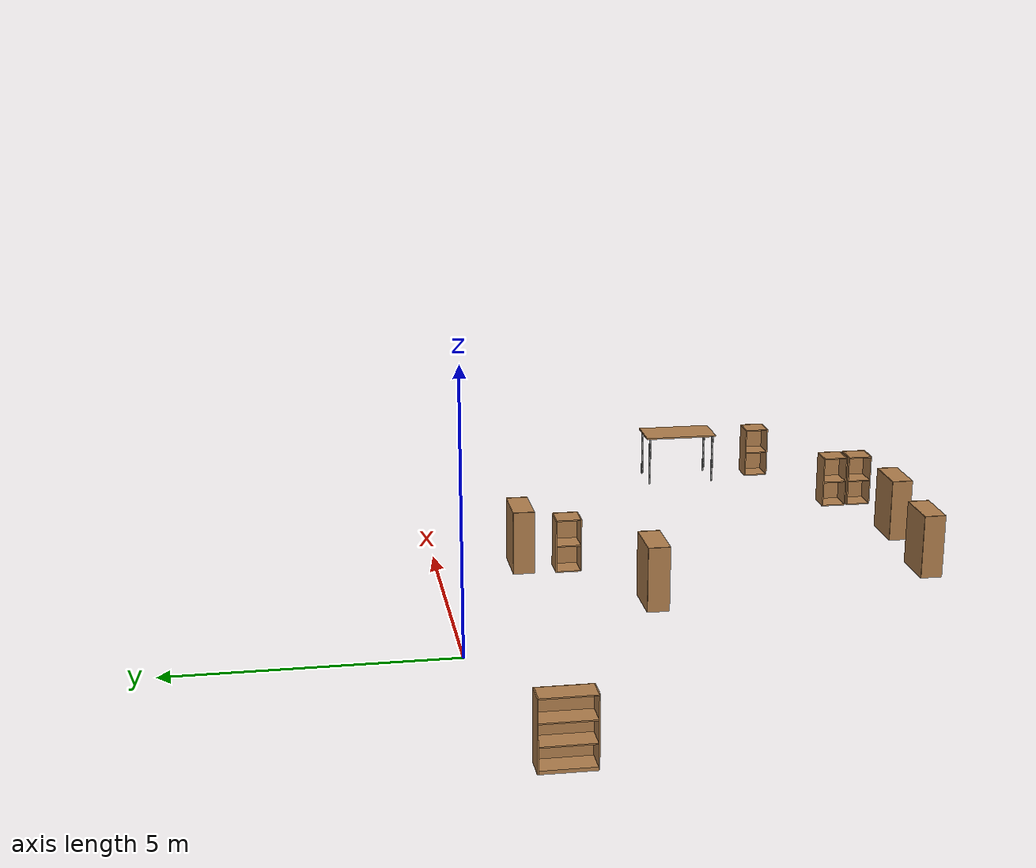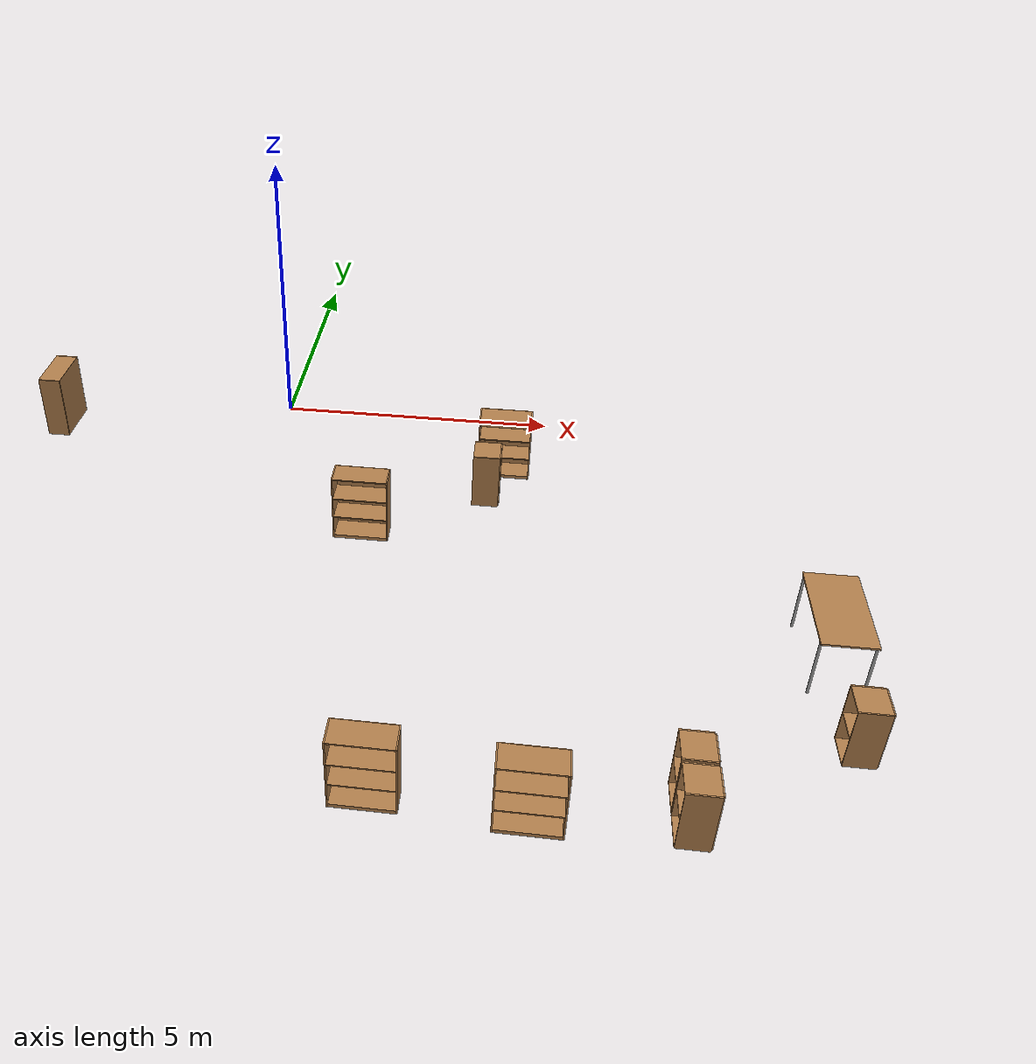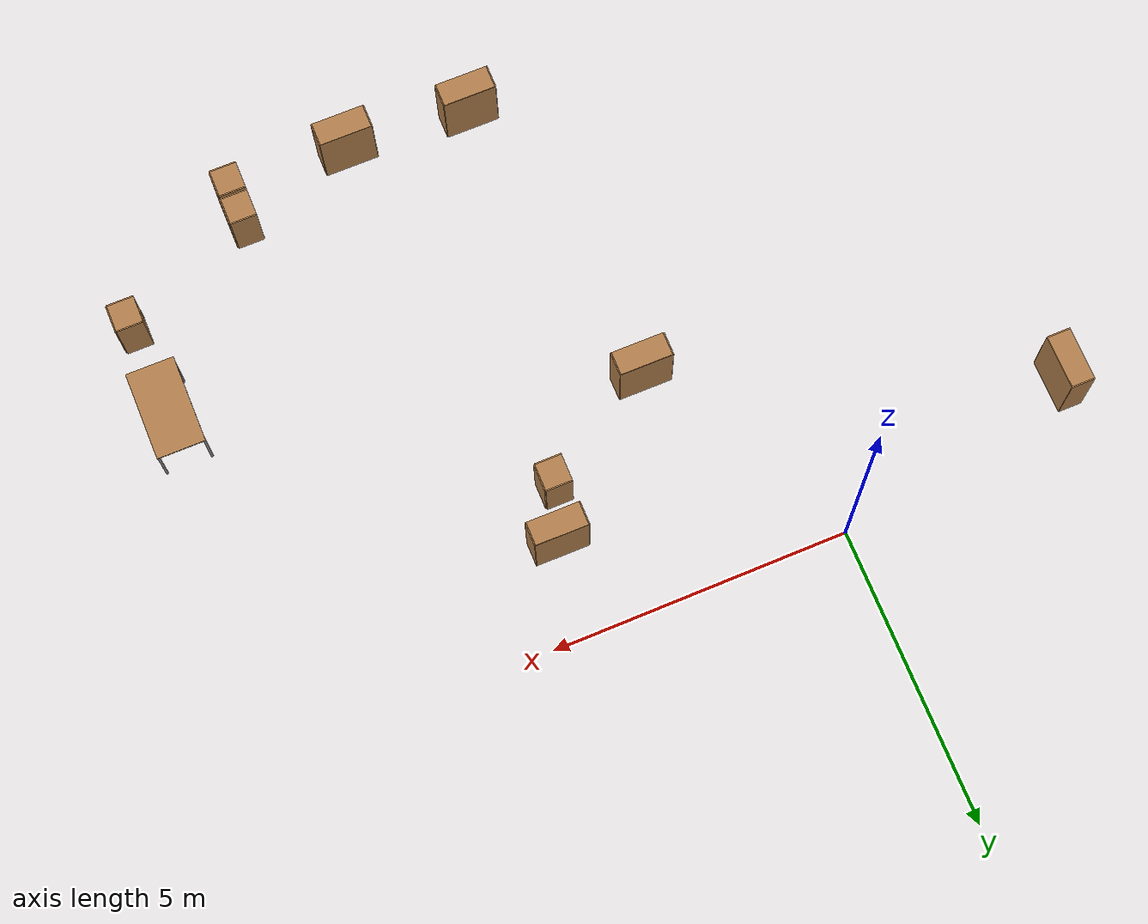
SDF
<sdf version="1.4">
 <world name="prepare">
  <model name="bookshelf_0">
   <static>1</static>
   <link name="link">
    <inertial><mass>1</mass></inertial>
    <collision name="back">
     <pose>0 0.005 0.6 0 -0 0</pose>
     <geometry><box><size>0.9 0.01 1.2</size></box></geometry>
    </collision>
    <visual name="visual1">
     <pose>0 0.005 0.6 0 -0 0</pose>
     <geometry><box><size>0.9 0.01 1.2</size></box></geometry>
     <material>
      <script><uri>file://media/materials/scripts/gazebo.material</uri><name>Gazebo/Wood</name></script>
     </material>
    </visual>
    <collision name="left_side">
     <pose>0.45 -0.195 0.6 0 -0 0</pose>
     <geometry><box><size>0.02 0.4 1.2</size></box></geometry>
    </collision>
    <visual name="visual2">
     <pose>0.45 -0.195 0.6 0 -0 0</pose>
     <geometry><box><size>0.02 0.4 1.2</size></box></geometry>
     <material>
      <script><uri>file://media/materials/scripts/gazebo.material</uri><name>Gazebo/Wood</name></script>
     </material>
    </visual>
    <collision name="right_side">
     <pose>-0.45 -0.195 0.6 0 -0 0</pose>
     <geometry><box><size>0.02 0.4 1.2</size></box></geometry>
    </collision>
    <visual name="visual3">
     <pose>-0.45 -0.195 0.6 0 -0 0</pose>
     <geometry><box><size>0.02 0.4 1.2</size></box></geometry>
     <material>
      <script><uri>file://media/materials/scripts/gazebo.material</uri><name>Gazebo/Wood</name></script>
     </material>
    </visual>
    <collision name="bottom">
     <pose>0 -0.195 0.03 0 -0 0</pose>
     <geometry><box><size>0.88 0.4 0.06</size></box></geometry>
    </collision>
    <visual name="visual4">
     <pose>0 -0.195 0.03 0 -0 0</pose>
     <geometry><box><size>0.88 0.4 0.06</size></box></geometry>
     <material>
      <script><uri>file://media/materials/scripts/gazebo.material</uri><name>Gazebo/Wood</name></script>
     </material>
    </visual>
    <collision name="top">
     <pose>0 -0.195 1.19 0 -0 0</pose>
     <geometry><box><size>0.88 0.4 0.02</size></box></geometry>
    </collision>
    <visual name="visual5">
     <pose>0 -0.195 1.19 0 -0 0</pose>
     <geometry><box><size>0.88 0.4 0.02</size></box></geometry>
     <material>
      <script><uri>file://media/materials/scripts/gazebo.material</uri><name>Gazebo/Wood</name></script>
     </material>
    </visual>
    <collision name="low_shelf">
     <pose>0 -0.195 0.43 0 -0 0</pose>
     <geometry><box><size>0.88 0.4 0.02</size></box></geometry>
    </collision>
    <visual name="visual6">
     <pose>0 -0.195 0.43 0 -0 0</pose>
     <geometry><box><size>0.88 0.4 0.02</size></box></geometry>
     <material>
      <script><uri>file://media/materials/scripts/gazebo.material</uri><name>Gazebo/Wood</name></script>
     </material>
    </visual>
    <collision name="high_shelf">
     <pose>0 -0.195 0.8 0 -0 0</pose>
     <geometry><box><size>0.88 0.4 0.02</size></box></geometry>
    </collision>
    <visual name="visual7">
     <pose>0 -0.195 0.8 0 -0 0</pose>
     <geometry><box><size>0.88 0.4 0.02</size></box></geometry>
     <material>
      <script><uri>file://media/materials/scripts/gazebo.material</uri><name>Gazebo/Wood</name></script>
     </material>
    </visual>
    <velocity_decay><linear>0</linear><angular>0</angular></velocity_decay>
   </link>
   <pose>-4 -1 0 0 0 -1.5708</pose>
  </model>
  <model name="bookshelf_2">
   <static>1</static>
   <link name="link">
    <inertial><mass>1</mass></inertial>
    <collision name="back">
     <pose>0 0.005 0.6 0 -0 0</pose>
     <geometry><box><size>0.9 0.01 1.2</size></box></geometry>
    </collision>
    <visual name="visual1">
     <pose>0 0.005 0.6 0 -0 0</pose>
     <geometry><box><size>0.9 0.01 1.2</size></box></geometry>
     <material>
      <script><uri>file://media/materials/scripts/gazebo.material</uri><name>Gazebo/Wood</name></script>
     </material>
    </visual>
    <collision name="left_side">
     <pose>0.45 -0.195 0.6 0 -0 0</pose>
     <geometry><box><size>0.02 0.4 1.2</size></box></geometry>
    </collision>
    <visual name="visual2">
     <pose>0.45 -0.195 0.6 0 -0 0</pose>
     <geometry><box><size>0.02 0.4 1.2</size></box></geometry>
     <material>
      <script><uri>file://media/materials/scripts/gazebo.material</uri><name>Gazebo/Wood</name></script>
     </material>
    </visual>
    <collision name="right_side">
     <pose>-0.45 -0.195 0.6 0 -0 0</pose>
     <geometry><box><size>0.02 0.4 1.2</size></box></geometry>
    </collision>
    <visual name="visual3">
     <pose>-0.45 -0.195 0.6 0 -0 0</pose>
     <geometry><box><size>0.02 0.4 1.2</size></box></geometry>
     <material>
      <script><uri>file://media/materials/scripts/gazebo.material</uri><name>Gazebo/Wood</name></script>
     </material>
    </visual>
    <collision name="bottom">
     <pose>0 -0.195 0.03 0 -0 0</pose>
     <geometry><box><size>0.88 0.4 0.06</size></box></geometry>
    </collision>
    <visual name="visual4">
     <pose>0 -0.195 0.03 0 -0 0</pose>
     <geometry><box><size>0.88 0.4 0.06</size></box></geometry>
     <material>
      <script><uri>file://media/materials/scripts/gazebo.material</uri><name>Gazebo/Wood</name></script>
     </material>
    </visual>
    <collision name="top">
     <pose>0 -0.195 1.19 0 -0 0</pose>
     <geometry><box><size>0.88 0.4 0.02</size></box></geometry>
    </collision>
    <visual name="visual5">
     <pose>0 -0.195 1.19 0 -0 0</pose>
     <geometry><box><size>0.88 0.4 0.02</size></box></geometry>
     <material>
      <script><uri>file://media/materials/scripts/gazebo.material</uri><name>Gazebo/Wood</name></script>
     </material>
    </visual>
    <collision name="low_shelf">
     <pose>0 -0.195 0.43 0 -0 0</pose>
     <geometry><box><size>0.88 0.4 0.02</size></box></geometry>
    </collision>
    <visual name="visual6">
     <pose>0 -0.195 0.43 0 -0 0</pose>
     <geometry><box><size>0.88 0.4 0.02</size></box></geometry>
     <material>
      <script><uri>file://media/materials/scripts/gazebo.material</uri><name>Gazebo/Wood</name></script>
     </material>
    </visual>
    <collision name="high_shelf">
     <pose>0 -0.195 0.8 0 -0 0</pose>
     <geometry><box><size>0.88 0.4 0.02</size></box></geometry>
    </collision>
    <visual name="visual7">
     <pose>0 -0.195 0.8 0 -0 0</pose>
     <geometry><box><size>0.88 0.4 0.02</size></box></geometry>
     <material>
      <script><uri>file://media/materials/scripts/gazebo.material</uri><name>Gazebo/Wood</name></script>
     </material>
    </visual>
    <velocity_decay><linear>0</linear><angular>0</angular></velocity_decay>
   </link>
   <pose>2.87189 -8.79193 0 0 -0 0</pose>
  </model>
  <model name="bookshelf_3">
   <static>1</static>
   <link name="link">
    <inertial><mass>1</mass></inertial>
    <collision name="back">
     <pose>0 0.005 0.6 0 -0 0</pose>
     <geometry><box><size>0.9 0.01 1.2</size></box></geometry>
    </collision>
    <visual name="visual1">
     <pose>0 0.005 0.6 0 -0 0</pose>
     <geometry><box><size>0.9 0.01 1.2</size></box></geometry>
     <material>
      <script><uri>file://media/materials/scripts/gazebo.material</uri><name>Gazebo/Wood</name></script>
     </material>
    </visual>
    <collision name="left_side">
     <pose>0.45 -0.195 0.6 0 -0 0</pose>
     <geometry><box><size>0.02 0.4 1.2</size></box></geometry>
    </collision>
    <visual name="visual2">
     <pose>0.45 -0.195 0.6 0 -0 0</pose>
     <geometry><box><size>0.02 0.4 1.2</size></box></geometry>
     <material>
      <script><uri>file://media/materials/scripts/gazebo.material</uri><name>Gazebo/Wood</name></script>
     </material>
    </visual>
    <collision name="right_side">
     <pose>-0.45 -0.195 0.6 0 -0 0</pose>
     <geometry><box><size>0.02 0.4 1.2</size></box></geometry>
    </collision>
    <visual name="visual3">
     <pose>-0.45 -0.195 0.6 0 -0 0</pose>
     <geometry><box><size>0.02 0.4 1.2</size></box></geometry>
     <material>
      <script><uri>file://media/materials/scripts/gazebo.material</uri><name>Gazebo/Wood</name></script>
     </material>
    </visual>
    <collision name="bottom">
     <pose>0 -0.195 0.03 0 -0 0</pose>
     <geometry><box><size>0.88 0.4 0.06</size></box></geometry>
    </collision>
    <visual name="visual4">
     <pose>0 -0.195 0.03 0 -0 0</pose>
     <geometry><box><size>0.88 0.4 0.06</size></box></geometry>
     <material>
      <script><uri>file://media/materials/scripts/gazebo.material</uri><name>Gazebo/Wood</name></script>
     </material>
    </visual>
    <collision name="top">
     <pose>0 -0.195 1.19 0 -0 0</pose>
     <geometry><box><size>0.88 0.4 0.02</size></box></geometry>
    </collision>
    <visual name="visual5">
     <pose>0 -0.195 1.19 0 -0 0</pose>
     <geometry><box><size>0.88 0.4 0.02</size></box></geometry>
     <material>
      <script><uri>file://media/materials/scripts/gazebo.material</uri><name>Gazebo/Wood</name></script>
     </material>
    </visual>
    <collision name="low_shelf">
     <pose>0 -0.195 0.43 0 -0 0</pose>
     <geometry><box><size>0.88 0.4 0.02</size></box></geometry>
    </collision>
    <visual name="visual6">
     <pose>0 -0.195 0.43 0 -0 0</pose>
     <geometry><box><size>0.88 0.4 0.02</size></box></geometry>
     <material>
      <script><uri>file://media/materials/scripts/gazebo.material</uri><name>Gazebo/Wood</name></script>
     </material>
    </visual>
    <collision name="high_shelf">
     <pose>0 -0.195 0.8 0 -0 0</pose>
     <geometry><box><size>0.88 0.4 0.02</size></box></geometry>
    </collision>
    <visual name="visual7">
     <pose>0 -0.195 0.8 0 -0 0</pose>
     <geometry><box><size>0.88 0.4 0.02</size></box></geometry>
     <material>
      <script><uri>file://media/materials/scripts/gazebo.material</uri><name>Gazebo/Wood</name></script>
     </material>
    </visual>
    <velocity_decay><linear>0</linear><angular>0</angular></velocity_decay>
   </link>
   <pose>4.97809 -8.90826 0 0 -0 0</pose>
  </model>
  <model name="cabinet_4">
   <static>1</static>
   <link name="cabinet_bottom_plate">
    <inertial>
     <pose>0 0 -1 0 -0 0</pose>
     <inertia><ixx>2.05</ixx><ixy>0</ixy><ixz>0</ixz><iyy>2.05</iyy><iyz>0</iyz><izz>2.05</izz></inertia>
     <mass>25</mass>
    </inertial>
    <collision name="cabinet_bottom_plate_geom">
     <pose>0 0 0.01 0 -0 0</pose>
     <geometry><box><size>0.45 0.45 0.02</size></box></geometry>
    </collision>
    <visual name="cabinet_bottom_plate_geom_visual">
     <pose>0 0 0.01 0 -0 0</pose>
     <geometry><box><size>0.45 0.45 0.02</size></box></geometry>
     <material>
      <script><uri>file://media/materials/scripts/gazebo.material</uri><name>Gazebo/Wood</name></script>
     </material>
    </visual>
    <collision name="cabinet_bottom_plate_geom_cabinet_back_plate">
     <pose>0.235 0 0.51 0 -0 0</pose>
     <geometry><box><size>0.02 0.45 1.02</size></box></geometry>
    </collision>
    <visual name="cabinet_bottom_plate_geom_cabinet_back_plate_visual">
     <pose>0.235 0 0.51 0 -0 0</pose>
     <geometry><box><size>0.02 0.45 1.02</size></box></geometry>
     <material>
      <script><uri>file://media/materials/scripts/gazebo.material</uri><name>Gazebo/Wood</name></script>
     </material>
    </visual>
    <collision name="cabinet_bottom_plate_geom_cabinet_left_plate">
     <pose>0 0.235 0.51 0 -0 0</pose>
     <geometry><box><size>0.45 0.02 1.02</size></box></geometry>
    </collision>
    <visual name="cabinet_bottom_plate_geom_cabinet_left_plate_visual">
     <pose>0 0.235 0.51 0 -0 0</pose>
     <geometry><box><size>0.45 0.02 1.02</size></box></geometry>
     <material>
      <script><uri>file://media/materials/scripts/gazebo.material</uri><name>Gazebo/Wood</name></script>
     </material>
    </visual>
    <collision name="cabinet_bottom_plate_geom_cabinet_middle_plate">
     <pose>0 0 0.51 0 -0 0</pose>
     <geometry><box><size>0.45 0.45 0.02</size></box></geometry>
    </collision>
    <visual name="cabinet_bottom_plate_geom_cabinet_middle_plate_visual">
     <pose>0 0 0.51 0 -0 0</pose>
     <geometry><box><size>0.45 0.45 0.02</size></box></geometry>
     <material>
      <script><uri>file://media/materials/scripts/gazebo.material</uri><name>Gazebo/Wood</name></script>
     </material>
    </visual>
    <collision name="cabinet_bottom_plate_geom_cabinet_right_plate">
     <pose>0 -0.235 0.51 0 -0 0</pose>
     <geometry><box><size>0.45 0.02 1.02</size></box></geometry>
    </collision>
    <visual name="cabinet_bottom_plate_geom_cabinet_right_plate_visual">
     <pose>0 -0.235 0.51 0 -0 0</pose>
     <geometry><box><size>0.45 0.02 1.02</size></box></geometry>
     <material>
      <script><uri>file://media/materials/scripts/gazebo.material</uri><name>Gazebo/Wood</name></script>
     </material>
    </visual>
    <collision name="cabinet_bottom_plate_geom_cabinet_top_plate">
     <pose>0 0 1.01 0 -0 0</pose>
     <geometry><box><size>0.45 0.45 0.02</size></box></geometry>
    </collision>
    <visual name="cabinet_bottom_plate_geom_cabinet_top_plate_visual">
     <pose>0 0 1.01 0 -0 0</pose>
     <geometry><box><size>0.45 0.45 0.02</size></box></geometry>
     <material>
      <script><uri>file://media/materials/scripts/gazebo.material</uri><name>Gazebo/Wood</name></script>
     </material>
    </visual>
    <velocity_decay><linear>0</linear><angular>0</angular></velocity_decay>
   </link>
   <pose>7 -9 0 0 -0 0</pose>
  </model>
  <model name="cabinet_5">
   <static>1</static>
   <link name="cabinet_bottom_plate">
    <inertial>
     <pose>0 0 -1 0 -0 0</pose>
     <inertia><ixx>2.05</ixx><ixy>0</ixy><ixz>0</ixz><iyy>2.05</iyy><iyz>0</iyz><izz>2.05</izz></inertia>
     <mass>25</mass>
    </inertial>
    <collision name="cabinet_bottom_plate_geom">
     <pose>0 0 0.01 0 -0 0</pose>
     <geometry><box><size>0.45 0.45 0.02</size></box></geometry>
    </collision>
    <visual name="cabinet_bottom_plate_geom_visual">
     <pose>0 0 0.01 0 -0 0</pose>
     <geometry><box><size>0.45 0.45 0.02</size></box></geometry>
     <material>
      <script><uri>file://media/materials/scripts/gazebo.material</uri><name>Gazebo/Wood</name></script>
     </material>
    </visual>
    <collision name="cabinet_bottom_plate_geom_cabinet_back_plate">
     <pose>0.235 0 0.51 0 -0 0</pose>
     <geometry><box><size>0.02 0.45 1.02</size></box></geometry>
    </collision>
    <visual name="cabinet_bottom_plate_geom_cabinet_back_plate_visual">
     <pose>0.235 0 0.51 0 -0 0</pose>
     <geometry><box><size>0.02 0.45 1.02</size></box></geometry>
     <material>
      <script><uri>file://media/materials/scripts/gazebo.material</uri><name>Gazebo/Wood</name></script>
     </material>
    </visual>
    <collision name="cabinet_bottom_plate_geom_cabinet_left_plate">
     <pose>0 0.235 0.51 0 -0 0</pose>
     <geometry><box><size>0.45 0.02 1.02</size></box></geometry>
    </collision>
    <visual name="cabinet_bottom_plate_geom_cabinet_left_plate_visual">
     <pose>0 0.235 0.51 0 -0 0</pose>
     <geometry><box><size>0.45 0.02 1.02</size></box></geometry>
     <material>
      <script><uri>file://media/materials/scripts/gazebo.material</uri><name>Gazebo/Wood</name></script>
     </material>
    </visual>
    <collision name="cabinet_bottom_plate_geom_cabinet_middle_plate">
     <pose>0 0 0.51 0 -0 0</pose>
     <geometry><box><size>0.45 0.45 0.02</size></box></geometry>
    </collision>
    <visual name="cabinet_bottom_plate_geom_cabinet_middle_plate_visual">
     <pose>0 0 0.51 0 -0 0</pose>
     <geometry><box><size>0.45 0.45 0.02</size></box></geometry>
     <material>
      <script><uri>file://media/materials/scripts/gazebo.material</uri><name>Gazebo/Wood</name></script>
     </material>
    </visual>
    <collision name="cabinet_bottom_plate_geom_cabinet_right_plate">
     <pose>0 -0.235 0.51 0 -0 0</pose>
     <geometry><box><size>0.45 0.02 1.02</size></box></geometry>
    </collision>
    <visual name="cabinet_bottom_plate_geom_cabinet_right_plate_visual">
     <pose>0 -0.235 0.51 0 -0 0</pose>
     <geometry><box><size>0.45 0.02 1.02</size></box></geometry>
     <material>
      <script><uri>file://media/materials/scripts/gazebo.material</uri><name>Gazebo/Wood</name></script>
     </material>
    </visual>
    <collision name="cabinet_bottom_plate_geom_cabinet_top_plate">
     <pose>0 0 1.01 0 -0 0</pose>
     <geometry><box><size>0.45 0.45 0.02</size></box></geometry>
    </collision>
    <visual name="cabinet_bottom_plate_geom_cabinet_top_plate_visual">
     <pose>0 0 1.01 0 -0 0</pose>
     <geometry><box><size>0.45 0.45 0.02</size></box></geometry>
     <material>
      <script><uri>file://media/materials/scripts/gazebo.material</uri><name>Gazebo/Wood</name></script>
     </material>
    </visual>
    <velocity_decay><linear>0</linear><angular>0</angular></velocity_decay>
   </link>
   <pose>7 -8.4802 0 0 -0 0</pose>
  </model>
  <model name="cabinet_6">
   <static>1</static>
   <link name="cabinet_bottom_plate">
    <inertial>
     <pose>0 0 -1 0 -0 0</pose>
     <inertia><ixx>2.05</ixx><ixy>0</ixy><ixz>0</ixz><iyy>2.05</iyy><iyz>0</iyz><izz>2.05</izz></inertia>
     <mass>25</mass>
    </inertial>
    <collision name="cabinet_bottom_plate_geom">
     <pose>0 0 0.01 0 -0 0</pose>
     <geometry><box><size>0.45 0.45 0.02</size></box></geometry>
    </collision>
    <visual name="cabinet_bottom_plate_geom_visual">
     <pose>0 0 0.01 0 -0 0</pose>
     <geometry><box><size>0.45 0.45 0.02</size></box></geometry>
     <material>
      <script><uri>file://media/materials/scripts/gazebo.material</uri><name>Gazebo/Wood</name></script>
     </material>
    </visual>
    <collision name="cabinet_bottom_plate_geom_cabinet_back_plate">
     <pose>0.235 0 0.51 0 -0 0</pose>
     <geometry><box><size>0.02 0.45 1.02</size></box></geometry>
    </collision>
    <visual name="cabinet_bottom_plate_geom_cabinet_back_plate_visual">
     <pose>0.235 0 0.51 0 -0 0</pose>
     <geometry><box><size>0.02 0.45 1.02</size></box></geometry>
     <material>
      <script><uri>file://media/materials/scripts/gazebo.material</uri><name>Gazebo/Wood</name></script>
     </material>
    </visual>
    <collision name="cabinet_bottom_plate_geom_cabinet_left_plate">
     <pose>0 0.235 0.51 0 -0 0</pose>
     <geometry><box><size>0.45 0.02 1.02</size></box></geometry>
    </collision>
    <visual name="cabinet_bottom_plate_geom_cabinet_left_plate_visual">
     <pose>0 0.235 0.51 0 -0 0</pose>
     <geometry><box><size>0.45 0.02 1.02</size></box></geometry>
     <material>
      <script><uri>file://media/materials/scripts/gazebo.material</uri><name>Gazebo/Wood</name></script>
     </material>
    </visual>
    <collision name="cabinet_bottom_plate_geom_cabinet_middle_plate">
     <pose>0 0 0.51 0 -0 0</pose>
     <geometry><box><size>0.45 0.45 0.02</size></box></geometry>
    </collision>
    <visual name="cabinet_bottom_plate_geom_cabinet_middle_plate_visual">
     <pose>0 0 0.51 0 -0 0</pose>
     <geometry><box><size>0.45 0.45 0.02</size></box></geometry>
     <material>
      <script><uri>file://media/materials/scripts/gazebo.material</uri><name>Gazebo/Wood</name></script>
     </material>
    </visual>
    <collision name="cabinet_bottom_plate_geom_cabinet_right_plate">
     <pose>0 -0.235 0.51 0 -0 0</pose>
     <geometry><box><size>0.45 0.02 1.02</size></box></geometry>
    </collision>
    <visual name="cabinet_bottom_plate_geom_cabinet_right_plate_visual">
     <pose>0 -0.235 0.51 0 -0 0</pose>
     <geometry><box><size>0.45 0.02 1.02</size></box></geometry>
     <material>
      <script><uri>file://media/materials/scripts/gazebo.material</uri><name>Gazebo/Wood</name></script>
     </material>
    </visual>
    <collision name="cabinet_bottom_plate_geom_cabinet_top_plate">
     <pose>0 0 1.01 0 -0 0</pose>
     <geometry><box><size>0.45 0.45 0.02</size></box></geometry>
    </collision>
    <visual name="cabinet_bottom_plate_geom_cabinet_top_plate_visual">
     <pose>0 0 1.01 0 -0 0</pose>
     <geometry><box><size>0.45 0.45 0.02</size></box></geometry>
     <material>
      <script><uri>file://media/materials/scripts/gazebo.material</uri><name>Gazebo/Wood</name></script>
     </material>
    </visual>
    <velocity_decay><linear>0</linear><angular>0</angular></velocity_decay>
   </link>
   <pose>4 -2.4116 0 0 -0 0</pose>
  </model>
  <model name="cabinet_7">
   <static>1</static>
   <link name="cabinet_bottom_plate">
    <inertial>
     <pose>0 0 -1 0 -0 0</pose>
     <inertia><ixx>2.05</ixx><ixy>0</ixy><ixz>0</ixz><iyy>2.05</iyy><iyz>0</iyz><izz>2.05</izz></inertia>
     <mass>25</mass>
    </inertial>
    <collision name="cabinet_bottom_plate_geom">
     <pose>0 0 0.01 0 -0 0</pose>
     <geometry><box><size>0.45 0.45 0.02</size></box></geometry>
    </collision>
    <visual name="cabinet_bottom_plate_geom_visual">
     <pose>0 0 0.01 0 -0 0</pose>
     <geometry><box><size>0.45 0.45 0.02</size></box></geometry>
     <material>
      <script><uri>file://media/materials/scripts/gazebo.material</uri><name>Gazebo/Wood</name></script>
     </material>
    </visual>
    <collision name="cabinet_bottom_plate_geom_cabinet_back_plate">
     <pose>0.235 0 0.51 0 -0 0</pose>
     <geometry><box><size>0.02 0.45 1.02</size></box></geometry>
    </collision>
    <visual name="cabinet_bottom_plate_geom_cabinet_back_plate_visual">
     <pose>0.235 0 0.51 0 -0 0</pose>
     <geometry><box><size>0.02 0.45 1.02</size></box></geometry>
     <material>
      <script><uri>file://media/materials/scripts/gazebo.material</uri><name>Gazebo/Wood</name></script>
     </material>
    </visual>
    <collision name="cabinet_bottom_plate_geom_cabinet_left_plate">
     <pose>0 0.235 0.51 0 -0 0</pose>
     <geometry><box><size>0.45 0.02 1.02</size></box></geometry>
    </collision>
    <visual name="cabinet_bottom_plate_geom_cabinet_left_plate_visual">
     <pose>0 0.235 0.51 0 -0 0</pose>
     <geometry><box><size>0.45 0.02 1.02</size></box></geometry>
     <material>
      <script><uri>file://media/materials/scripts/gazebo.material</uri><name>Gazebo/Wood</name></script>
     </material>
    </visual>
    <collision name="cabinet_bottom_plate_geom_cabinet_middle_plate">
     <pose>0 0 0.51 0 -0 0</pose>
     <geometry><box><size>0.45 0.45 0.02</size></box></geometry>
    </collision>
    <visual name="cabinet_bottom_plate_geom_cabinet_middle_plate_visual">
     <pose>0 0 0.51 0 -0 0</pose>
     <geometry><box><size>0.45 0.45 0.02</size></box></geometry>
     <material>
      <script><uri>file://media/materials/scripts/gazebo.material</uri><name>Gazebo/Wood</name></script>
     </material>
    </visual>
    <collision name="cabinet_bottom_plate_geom_cabinet_right_plate">
     <pose>0 -0.235 0.51 0 -0 0</pose>
     <geometry><box><size>0.45 0.02 1.02</size></box></geometry>
    </collision>
    <visual name="cabinet_bottom_plate_geom_cabinet_right_plate_visual">
     <pose>0 -0.235 0.51 0 -0 0</pose>
     <geometry><box><size>0.45 0.02 1.02</size></box></geometry>
     <material>
      <script><uri>file://media/materials/scripts/gazebo.material</uri><name>Gazebo/Wood</name></script>
     </material>
    </visual>
    <collision name="cabinet_bottom_plate_geom_cabinet_top_plate">
     <pose>0 0 1.01 0 -0 0</pose>
     <geometry><box><size>0.45 0.45 0.02</size></box></geometry>
    </collision>
    <visual name="cabinet_bottom_plate_geom_cabinet_top_plate_visual">
     <pose>0 0 1.01 0 -0 0</pose>
     <geometry><box><size>0.45 0.45 0.02</size></box></geometry>
     <material>
      <script><uri>file://media/materials/scripts/gazebo.material</uri><name>Gazebo/Wood</name></script>
     </material>
    </visual>
    <velocity_decay><linear>0</linear><angular>0</angular></velocity_decay>
   </link>
   <pose>9.29539 -7.44003 0 0 -0 0</pose>
  </model>
  <model name="table_0">
   <static>1</static>
   <link name="link">
    <collision name="surface">
     <pose>0 0 1 0 -0 0</pose>
     <geometry><box><size>1.5 0.8 0.03</size></box></geometry>
    </collision>
    <visual name="visual1">
     <pose>0 0 1 0 -0 0</pose>
     <geometry><box><size>1.5 0.8 0.03</size></box></geometry>
     <material>
      <script><uri>file://media/materials/scripts/gazebo.material</uri><name>Gazebo/Wood</name></script>
     </material>
    </visual>
    <collision name="front_left_leg">
     <pose>0.68 0.38 0.5 0 -0 0</pose>
     <geometry><cylinder><radius>0.02</radius><length>1</length></cylinder></geometry>
    </collision>
    <visual name="front_left_leg">
     <pose>0.68 0.38 0.5 0 -0 0</pose>
     <geometry><cylinder><radius>0.02</radius><length>1</length></cylinder></geometry>
     <material>
      <script><uri>file://media/materials/scripts/gazebo.material</uri><name>Gazebo/Grey</name></script>
     </material>
    </visual>
    <collision name="front_right_leg">
     <pose>0.68 -0.38 0.5 0 -0 0</pose>
     <geometry><cylinder><radius>0.02</radius><length>1</length></cylinder></geometry>
    </collision>
    <visual name="front_right_leg">
     <pose>0.68 -0.38 0.5 0 -0 0</pose>
     <geometry><cylinder><radius>0.02</radius><length>1</length></cylinder></geometry>
     <material>
      <script><uri>file://media/materials/scripts/gazebo.material</uri><name>Gazebo/Grey</name></script>
     </material>
    </visual>
    <collision name="back_right_leg">
     <pose>-0.68 -0.38 0.5 0 -0 0</pose>
     <geometry><cylinder><radius>0.02</radius><length>1</length></cylinder></geometry>
    </collision>
    <visual name="back_right_leg">
     <pose>-0.68 -0.38 0.5 0 -0 0</pose>
     <geometry><cylinder><radius>0.02</radius><length>1</length></cylinder></geometry>
     <material>
      <script><uri>file://media/materials/scripts/gazebo.material</uri><name>Gazebo/Grey</name></script>
     </material>
    </visual>
    <collision name="back_left_leg">
     <pose>-0.68 0.38 0.5 0 -0 0</pose>
     <geometry><cylinder><radius>0.02</radius><length>1</length></cylinder></geometry>
    </collision>
    <visual name="back_left_leg">
     <pose>-0.68 0.38 0.5 0 -0 0</pose>
     <geometry><cylinder><radius>0.02</radius><length>1</length></cylinder></geometry>
     <material>
      <script><uri>file://media/materials/scripts/gazebo.material</uri><name>Gazebo/Grey</name></script>
     </material>
    </visual>
    <velocity_decay><linear>0</linear><angular>0</angular></velocity_decay>
   </link>
   <pose>9.22235 -5.71989 0 0 0 -1.5708</pose>
  </model>
  <model name="bookshelf_5">
   <static>1</static>
   <link name="link">
    <inertial><mass>1</mass></inertial>
    <collision name="back">
     <pose>0 0.005 0.6 0 -0 0</pose>
     <geometry><box><size>0.9 0.01 1.2</size></box></geometry>
    </collision>
    <visual name="visual1">
     <pose>0 0.005 0.6 0 -0 0</pose>
     <geometry><box><size>0.9 0.01 1.2</size></box></geometry>
     <material>
      <script><uri>file://media/materials/scripts/gazebo.material</uri><name>Gazebo/Wood</name></script>
     </material>
    </visual>
    <collision name="left_side">
     <pose>0.45 -0.195 0.6 0 -0 0</pose>
     <geometry><box><size>0.02 0.4 1.2</size></box></geometry>
    </collision>
    <visual name="visual2">
     <pose>0.45 -0.195 0.6 0 -0 0</pose>
     <geometry><box><size>0.02 0.4 1.2</size></box></geometry>
     <material>
      <script><uri>file://media/materials/scripts/gazebo.material</uri><name>Gazebo/Wood</name></script>
     </material>
    </visual>
    <collision name="right_side">
     <pose>-0.45 -0.195 0.6 0 -0 0</pose>
     <geometry><box><size>0.02 0.4 1.2</size></box></geometry>
    </collision>
    <visual name="visual3">
     <pose>-0.45 -0.195 0.6 0 -0 0</pose>
     <geometry><box><size>0.02 0.4 1.2</size></box></geometry>
     <material>
      <script><uri>file://media/materials/scripts/gazebo.material</uri><name>Gazebo/Wood</name></script>
     </material>
    </visual>
    <collision name="bottom">
     <pose>0 -0.195 0.03 0 -0 0</pose>
     <geometry><box><size>0.88 0.4 0.06</size></box></geometry>
    </collision>
    <visual name="visual4">
     <pose>0 -0.195 0.03 0 -0 0</pose>
     <geometry><box><size>0.88 0.4 0.06</size></box></geometry>
     <material>
      <script><uri>file://media/materials/scripts/gazebo.material</uri><name>Gazebo/Wood</name></script>
     </material>
    </visual>
    <collision name="top">
     <pose>0 -0.195 1.19 0 -0 0</pose>
     <geometry><box><size>0.88 0.4 0.02</size></box></geometry>
    </collision>
    <visual name="visual5">
     <pose>0 -0.195 1.19 0 -0 0</pose>
     <geometry><box><size>0.88 0.4 0.02</size></box></geometry>
     <material>
      <script><uri>file://media/materials/scripts/gazebo.material</uri><name>Gazebo/Wood</name></script>
     </material>
    </visual>
    <collision name="low_shelf">
     <pose>0 -0.195 0.43 0 -0 0</pose>
     <geometry><box><size>0.88 0.4 0.02</size></box></geometry>
    </collision>
    <visual name="visual6">
     <pose>0 -0.195 0.43 0 -0 0</pose>
     <geometry><box><size>0.88 0.4 0.02</size></box></geometry>
     <material>
      <script><uri>file://media/materials/scripts/gazebo.material</uri><name>Gazebo/Wood</name></script>
     </material>
    </visual>
    <collision name="high_shelf">
     <pose>0 -0.195 0.8 0 -0 0</pose>
     <geometry><box><size>0.88 0.4 0.02</size></box></geometry>
    </collision>
    <visual name="visual7">
     <pose>0 -0.195 0.8 0 -0 0</pose>
     <geometry><box><size>0.88 0.4 0.02</size></box></geometry>
     <material>
      <script><uri>file://media/materials/scripts/gazebo.material</uri><name>Gazebo/Wood</name></script>
     </material>
    </visual>
    <velocity_decay><linear>0</linear><angular>0</angular></velocity_decay>
   </link>
   <pose>4.27371 -1.38188 0 0 -0 0</pose>
  </model>
  <model name="bookshelf_9">
   <static>1</static>
   <link name="link">
    <inertial><mass>1</mass></inertial>
    <collision name="back">
     <pose>0 0.005 0.6 0 -0 0</pose>
     <geometry><box><size>0.9 0.01 1.2</size></box></geometry>
    </collision>
    <visual name="visual1">
     <pose>0 0.005 0.6 0 -0 0</pose>
     <geometry><box><size>0.9 0.01 1.2</size></box></geometry>
     <material>
      <script><uri>file://media/materials/scripts/gazebo.material</uri><name>Gazebo/Wood</name></script>
     </material>
    </visual>
    <collision name="left_side">
     <pose>0.45 -0.195 0.6 0 -0 0</pose>
     <geometry><box><size>0.02 0.4 1.2</size></box></geometry>
    </collision>
    <visual name="visual2">
     <pose>0.45 -0.195 0.6 0 -0 0</pose>
     <geometry><box><size>0.02 0.4 1.2</size></box></geometry>
     <material>
      <script><uri>file://media/materials/scripts/gazebo.material</uri><name>Gazebo/Wood</name></script>
     </material>
    </visual>
    <collision name="right_side">
     <pose>-0.45 -0.195 0.6 0 -0 0</pose>
     <geometry><box><size>0.02 0.4 1.2</size></box></geometry>
    </collision>
    <visual name="visual3">
     <pose>-0.45 -0.195 0.6 0 -0 0</pose>
     <geometry><box><size>0.02 0.4 1.2</size></box></geometry>
     <material>
      <script><uri>file://media/materials/scripts/gazebo.material</uri><name>Gazebo/Wood</name></script>
     </material>
    </visual>
    <collision name="bottom">
     <pose>0 -0.195 0.03 0 -0 0</pose>
     <geometry><box><size>0.88 0.4 0.06</size></box></geometry>
    </collision>
    <visual name="visual4">
     <pose>0 -0.195 0.03 0 -0 0</pose>
     <geometry><box><size>0.88 0.4 0.06</size></box></geometry>
     <material>
      <script><uri>file://media/materials/scripts/gazebo.material</uri><name>Gazebo/Wood</name></script>
     </material>
    </visual>
    <collision name="top">
     <pose>0 -0.195 1.19 0 -0 0</pose>
     <geometry><box><size>0.88 0.4 0.02</size></box></geometry>
    </collision>
    <visual name="visual5">
     <pose>0 -0.195 1.19 0 -0 0</pose>
     <geometry><box><size>0.88 0.4 0.02</size></box></geometry>
     <material>
      <script><uri>file://media/materials/scripts/gazebo.material</uri><name>Gazebo/Wood</name></script>
     </material>
    </visual>
    <collision name="low_shelf">
     <pose>0 -0.195 0.43 0 -0 0</pose>
     <geometry><box><size>0.88 0.4 0.02</size></box></geometry>
    </collision>
    <visual name="visual6">
     <pose>0 -0.195 0.43 0 -0 0</pose>
     <geometry><box><size>0.88 0.4 0.02</size></box></geometry>
     <material>
      <script><uri>file://media/materials/scripts/gazebo.material</uri><name>Gazebo/Wood</name></script>
     </material>
    </visual>
    <collision name="high_shelf">
     <pose>0 -0.195 0.8 0 -0 0</pose>
     <geometry><box><size>0.88 0.4 0.02</size></box></geometry>
    </collision>
    <visual name="visual7">
     <pose>0 -0.195 0.8 0 -0 0</pose>
     <geometry><box><size>0.88 0.4 0.02</size></box></geometry>
     <material>
      <script><uri>file://media/materials/scripts/gazebo.material</uri><name>Gazebo/Wood</name></script>
     </material>
    </visual>
    <velocity_decay><linear>0</linear><angular>0</angular></velocity_decay>
   </link>
   <pose>2 -3.43663 0 0 -0 0</pose>
  </model>
 </world>
</sdf>
